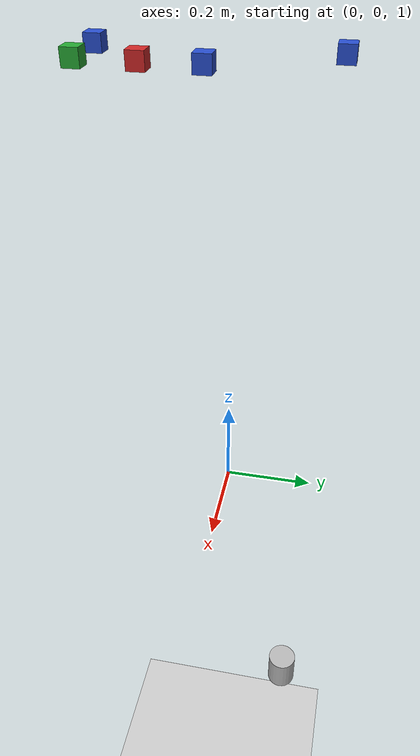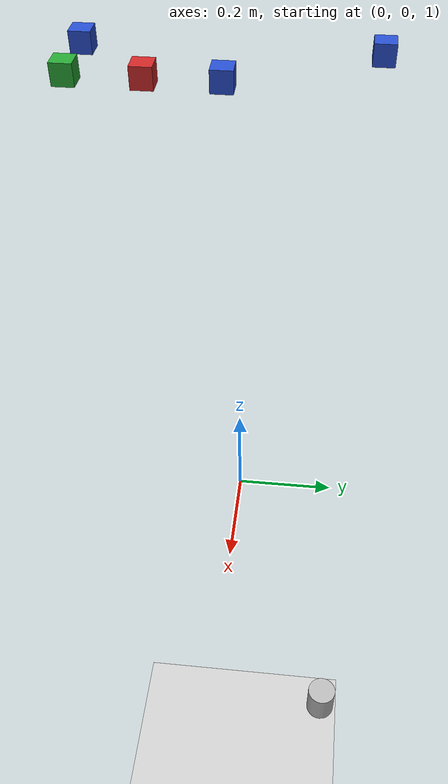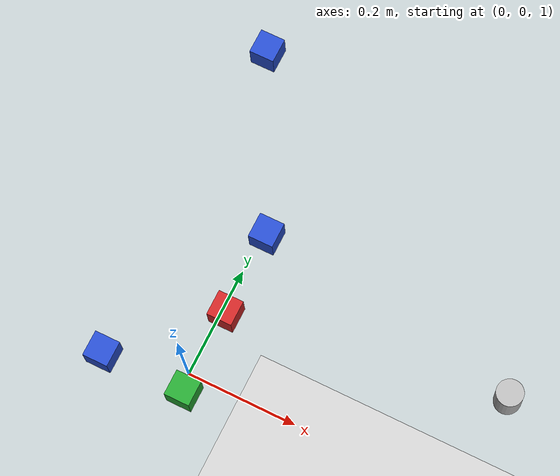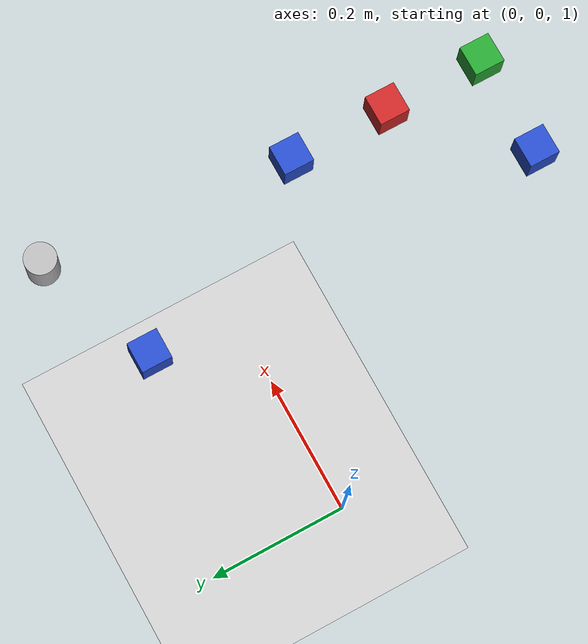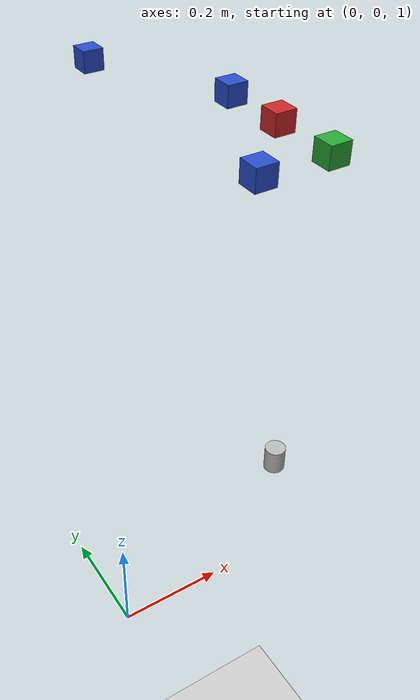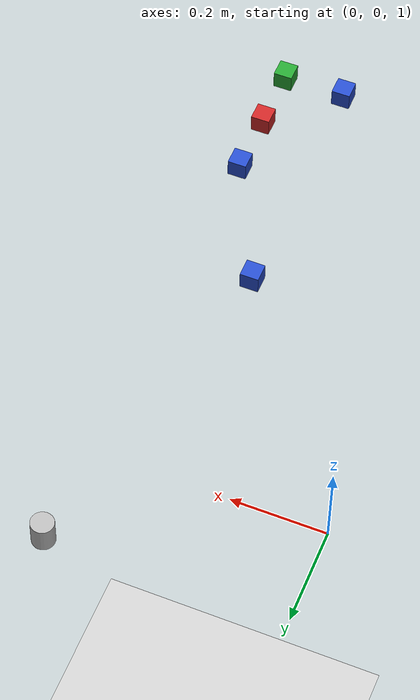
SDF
<sdf version="1.6">
 <world name="CRANE-X7 with Table">
  <scene><shadows>0</shadows></scene>
  <include><uri>model://sun</uri></include>
  <model name="wood_cube_5cm">
   <link name="link">
    <pose>0.20 0 2.0 0 0 0</pose>
    <inertial>
     <mass>0.0565</mass>
     <inertia>
      <ixx>2.3541666666666672e-05</ixx>
      <ixy>0</ixy>
      <ixz>0</ixz>
      <iyy>2.3541666666666672e-05</iyy>
      <iyz>0</iyz>
      <izz>2.3541666666666672e-05</izz>
     </inertia>
    </inertial>
    <collision name="collision">
     <geometry><box><size>0.03 0.03 0.03</size></box></geometry>
     <surface>
      <contact>
       <poissons_ratio>0.347</poissons_ratio>
       <elastic_modulus>8.8e+09</elastic_modulus>
       <ode><kp>100000</kp><kd>1</kd><max_vel>1.0</max_vel><min_depth>0.001</min_depth></ode>
      </contact>
      <friction>
       <torsional>
        <coefficient>1.0</coefficient>
        <use_patch_radius>0</use_patch_radius>
        <surface_radius>0.05</surface_radius>
       </torsional>
      </friction>
     </surface>
    </collision>
    <visual name="visual">
     <geometry><box><size>0.03 0.03 0.03</size></box></geometry>
     <material>
      <script><uri>file://media/materials/scripts/gazebo.material</uri><name>Gazebo/Blue</name></script>
     </material>
    </visual>
   </link>
  </model>
  <model name="wood_cube_5cm_2">
   <link name="link">
    <pose>0.20 -0.20 2.0 0 0 0</pose>
    <inertial>
     <mass>0.0565</mass>
     <inertia>
      <ixx>2.3541666666666672e-05</ixx>
      <ixy>0</ixy>
      <ixz>0</ixz>
      <iyy>2.3541666666666672e-05</iyy>
      <iyz>0</iyz>
      <izz>2.3541666666666672e-05</izz>
     </inertia>
    </inertial>
    <collision name="collision">
     <geometry><box><size>0.03 0.03 0.03</size></box></geometry>
     <surface>
      <contact>
       <poissons_ratio>0.347</poissons_ratio>
       <elastic_modulus>8.8e+09</elastic_modulus>
       <ode><kp>100000</kp><kd>1</kd><max_vel>1.0</max_vel><min_depth>0.001</min_depth></ode>
      </contact>
      <friction>
       <torsional>
        <coefficient>1.0</coefficient>
        <use_patch_radius>0</use_patch_radius>
        <surface_radius>0.05</surface_radius>
       </torsional>
      </friction>
     </surface>
    </collision>
    <visual name="visual">
     <geometry><box><size>0.03 0.03 0.03</size></box></geometry>
     <material>
      <script><uri>file://media/materials/scripts/gazebo.material</uri><name>Gazebo/Green</name></script>
     </material>
    </visual>
   </link>
  </model>
  <model name="wood_cube_5cm_4">
   <link name="link">
    <pose>0.10 -0.20 2.0 0 0 0</pose>
    <inertial>
     <mass>0.0565</mass>
     <inertia>
      <ixx>2.3541666666666672e-05</ixx>
      <ixy>0</ixy>
      <ixz>0</ixz>
      <iyy>2.3541666666666672e-05</iyy>
      <iyz>0</iyz>
      <izz>2.3541666666666672e-05</izz>
     </inertia>
    </inertial>
    <collision name="collision">
     <geometry><box><size>0.03 0.03 0.03</size></box></geometry>
     <surface>
      <contact>
       <poissons_ratio>0.347</poissons_ratio>
       <elastic_modulus>8.8e+09</elastic_modulus>
       <ode><kp>100000</kp><kd>1</kd><max_vel>1.0</max_vel><min_depth>0.001</min_depth></ode>
      </contact>
      <friction>
       <torsional>
        <coefficient>1.0</coefficient>
        <use_patch_radius>0</use_patch_radius>
        <surface_radius>0.05</surface_radius>
       </torsional>
      </friction>
     </surface>
    </collision>
    <visual name="visual">
     <geometry><box><size>0.03 0.03 0.03</size></box></geometry>
     <material>
      <script><uri>file://media/materials/scripts/gazebo.material</uri><name>Gazebo/Blue</name></script>
     </material>
    </visual>
   </link>
  </model>
  <model name="wood_cube_5cm_5">
   <link name="link">
    <pose>0.10 0.2 2.0 0 0 0</pose>
    <inertial>
     <mass>0.0565</mass>
     <inertia>
      <ixx>2.3541666666666672e-05</ixx>
      <ixy>0</ixy>
      <ixz>0</ixz>
      <iyy>2.3541666666666672e-05</iyy>
      <iyz>0</iyz>
      <izz>2.3541666666666672e-05</izz>
     </inertia>
    </inertial>
    <collision name="collision">
     <geometry><box><size>0.03 0.03 0.03</size></box></geometry>
     <surface>
      <contact>
       <poissons_ratio>0.347</poissons_ratio>
       <elastic_modulus>8.8e+09</elastic_modulus>
       <ode><kp>100000</kp><kd>1</kd><max_vel>1.0</max_vel><min_depth>0.001</min_depth></ode>
      </contact>
      <friction>
       <torsional>
        <coefficient>1.0</coefficient>
        <use_patch_radius>0</use_patch_radius>
        <surface_radius>0.05</surface_radius>
       </torsional>
      </friction>
     </surface>
    </collision>
    <visual name="visual">
     <geometry><box><size>0.03 0.03 0.03</size></box></geometry>
     <material>
      <script><uri>file://media/materials/scripts/gazebo.material</uri><name>Gazebo/Blue</name></script>
     </material>
    </visual>
   </link>
  </model>
  <model name="wood_cube_5cm_6">
   <link name="link">
    <pose>0.20 -0.1 2.0 0 0 0</pose>
    <inertial>
     <mass>0.0565</mass>
     <inertia>
      <ixx>2.3541666666666672e-05</ixx>
      <ixy>0</ixy>
      <ixz>0</ixz>
      <iyy>2.3541666666666672e-05</iyy>
      <iyz>0</iyz>
      <izz>2.3541666666666672e-05</izz>
     </inertia>
    </inertial>
    <collision name="collision">
     <geometry><box><size>0.03 0.03 0.03</size></box></geometry>
     <surface>
      <contact>
       <poissons_ratio>0.347</poissons_ratio>
       <elastic_modulus>8.8e+09</elastic_modulus>
       <ode><kp>100000</kp><kd>1</kd><max_vel>1.0</max_vel><min_depth>0.001</min_depth></ode>
      </contact>
      <friction>
       <torsional>
        <coefficient>1.0</coefficient>
        <use_patch_radius>0</use_patch_radius>
        <surface_radius>0.05</surface_radius>
       </torsional>
      </friction>
     </surface>
    </collision>
    <visual name="visual">
     <geometry><box><size>0.03 0.03 0.03</size></box></geometry>
     <material>
      <script><uri>file://media/materials/scripts/gazebo.material</uri><name>Gazebo/Red</name></script>
     </material>
    </visual>
   </link>
  </model>
  <model name="cup1">
   <pose>0.5 0.2 1.0 0 0 0</pose>
   <link name="link">
    <inertial>
     <mass>0.01</mass>
     <inertia><ixx>0.083</ixx><ixy>0.0</ixy><ixz>0.0</ixz><iyy>0.083</iyy><iyz>0.0</iyz><izz>0.083</izz></inertia>
    </inertial>
    <collision name="collision">
     <geometry><cylinder><radius>0.024</radius><length>0.06</length></cylinder></geometry>
    </collision>
    <visual name="visual">
     <geometry><cylinder><radius>0.024</radius><length>0.06</length></cylinder></geometry>
    </visual>
   </link>
  </model>
  <model name="ground_plane">
   <include><uri>model://ground_plane</uri></include>
   <joint name="ground_joint" type="fixed"><parent>ground_plane::link</parent><child>table::link</child></joint>
  </model>
 </world>
</sdf>
